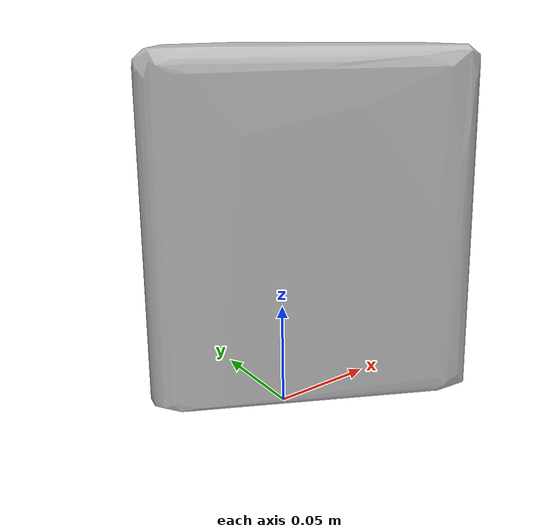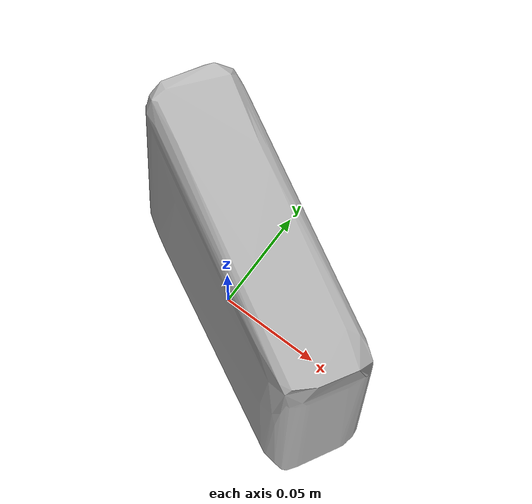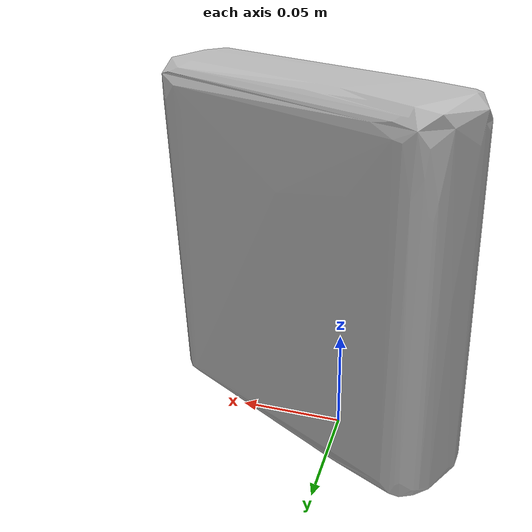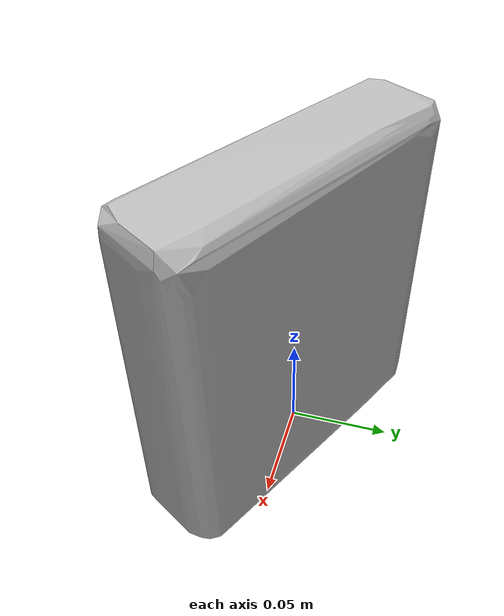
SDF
<?xml version='1.0'?>
<sdf version="1.4">
  <model name="quaker_chewy_peanut_butter">
    <static>false</static>
    <link name="link">
      <inertial>
        <pose>0.015839736871758246 -0.0010866723498209896 0.08514870782160804 -3.0730213375621913 -0.024821943065558398 -2.0759647630784674</pose>
        <mass>0.11546827203982139</mass>
        <inertia>
          <ixx>0.00046641959930851274</ixx>
          <ixy>6.323222782843966e-20</ixy>
          <ixz>-1.5580244367138093e-20</ixz>
          <iyy>0.00027524280012544537</iyy>
          <iyz>3.956492948455476e-21</iyz>
          <izz>0.0002332208977829103</izz>
        </inertia>
      </inertial>
      <collision name="collision">
        <geometry>
          <mesh>
            <!-- Use a downsampled mesh for collisions -->
            <uri>model:///quaker_chewy_peanut_butter/quaker_chewy_peanut_butter_250_collision.obj</uri>
	        </mesh>
        </geometry>
        <surface>
      </surface>
      </collision>
      <visual name="visual">
        <geometry>
          <mesh>
            <uri>model:///quaker_chewy_peanut_butter/optimized_tsdf_texture_mapped_mesh.obj</uri>
	        </mesh>
        </geometry>
        <material>
          <script>
            <uri>model:///quaker_chewy_peanut_butter/quaker_chewy_peanut_butter.material</uri>
            <name>quaker_chewy_peanut_butter</name>
          </script>
        </material>
      </visual>
    </link>
  </model>
</sdf>
